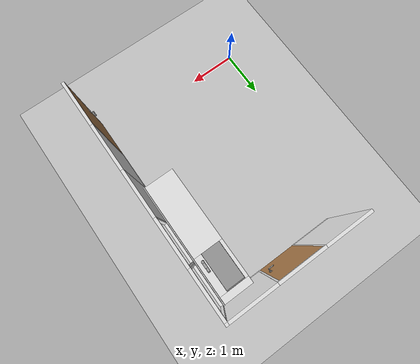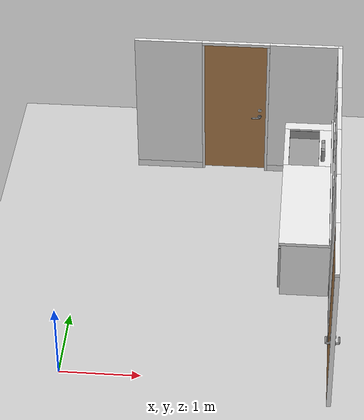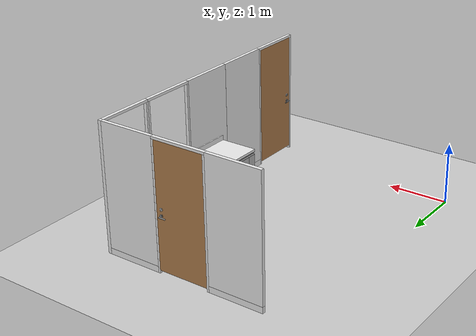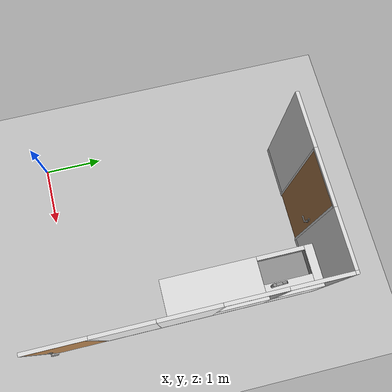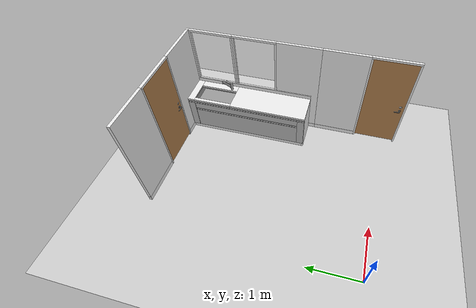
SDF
<sdf version="1.7">
 <world name="default">
  <model name="ground_plane">
   <static>1</static>
   <link name="link">
    <collision name="collision">
     <geometry><plane><normal>0 0 1</normal><size>100 100</size></plane></geometry>
     <surface>
      <contact><collide_bitmask>65535</collide_bitmask></contact>
      <friction><ode><mu>100</mu><mu2>50</mu2></ode></friction>
     </surface>
    </collision>
    <visual name="visual">
     <cast_shadows>0</cast_shadows>
     <geometry><plane><normal>0 0 1</normal><size>100 100</size></plane></geometry>
     <material>
      <script><uri>file://media/materials/scripts/gazebo.material</uri><name>Gazebo/Grey</name></script>
     </material>
    </visual>
   </link>
  </model>
  <model name="wall_front_a">
   <link name="link">
    <inertial>
     <mass>50</mass>
     <inertia><ixx>1</ixx><ixy>0</ixy><ixz>0</ixz><iyy>1</iyy><iyz>0</iyz><izz>1</izz></inertia>
    </inertial>
    <visual name="_frame">
     <pose>0 0 1.045 0 -0 0</pose>
     <geometry><box><size>0.055 0.055 2.09</size></box></geometry>
     <material>
      <script><uri>model://base_materials/color/scripts</uri><name>hsr_color/white</name></script>
     </material>
    </visual>
    <collision name="collision_frame">
     <pose>0 0 1.045 0 -0 0</pose>
     <geometry><box><size>0.055 0.055 2.09</size></box></geometry>
    </collision>
    <velocity_decay><linear>0</linear><angular>0</angular></velocity_decay>
   </link>
   <static>1</static>
   <pose>3.265 4.175 0 0 -0 0</pose>
  </model>
  <model name="wall_front_b">
   <link name="link">
    <inertial>
     <mass>50</mass>
     <inertia><ixx>1</ixx><ixy>0</ixy><ixz>0</ixz><iyy>1</iyy><iyz>0</iyz><izz>1</izz></inertia>
    </inertial>
    <visual name="bottom_frame">
     <pose>0 0 0.05 0 -0 0</pose>
     <geometry><box><size>0.055 0.9 0.1</size></box></geometry>
     <material>
      <script><uri>model://base_materials/color/scripts</uri><name>hsr_color/white</name></script>
     </material>
    </visual>
    <collision name="collision_bottom_frame">
     <pose>0 0 0.05 0 -0 0</pose>
     <geometry><box><size>0.055 0.9 0.1</size></box></geometry>
    </collision>
    <visual name="wall">
     <pose>0 0 0.4875 0 -0 0</pose>
     <geometry><box><size>0.055 0.9 0.775</size></box></geometry>
     <material>
      <script>
       <uri>model://base_materials/wall/scripts</uri>
       <uri>model://base_materials/wall/textures</uri>
       <name>wall/white_noise</name>
      </script>
     </material>
    </visual>
    <collision name="collision_wall">
     <pose>0 0 0.4875 0 -0 0</pose>
     <geometry><box><size>0.055 0.9 0.775</size></box></geometry>
    </collision>
    <visual name="center_frame">
     <pose>0 0 0.8925 0 -0 0</pose>
     <geometry><box><size>0.055 0.9 0.035</size></box></geometry>
     <material>
      <script><uri>model://base_materials/color/scripts</uri><name>hsr_color/white</name></script>
     </material>
    </visual>
    <collision name="collision_center_frame">
     <pose>0 0 0.8925 0 -0 0</pose>
     <geometry><box><size>0.055 0.9 0.035</size></box></geometry>
    </collision>
    <visual name="right_frame">
     <pose>0 0.4325 1.48 0 -0 0</pose>
     <geometry><box><size>0.055 0.035 1.14</size></box></geometry>
     <material>
      <script><uri>model://base_materials/color/scripts</uri><name>hsr_color/white</name></script>
     </material>
    </visual>
    <collision name="collision_right_frame">
     <pose>0 0.4325 1.48 0 -0 0</pose>
     <geometry><box><size>0.055 0.035 1.14</size></box></geometry>
    </collision>
    <visual name="left_frame">
     <pose>0 -0.4325 1.48 0 -0 0</pose>
     <geometry><box><size>0.055 0.035 1.14</size></box></geometry>
     <material>
      <script><uri>model://base_materials/color/scripts</uri><name>hsr_color/white</name></script>
     </material>
    </visual>
    <collision name="collision_left_frame">
     <pose>0 -0.4325 1.48 0 -0 0</pose>
     <geometry><box><size>0.055 0.035 1.14</size></box></geometry>
    </collision>
    <visual name="top_frame">
     <pose>0 0 2.07 0 -0 0</pose>
     <geometry><box><size>0.055 0.9 0.04</size></box></geometry>
     <material>
      <script><uri>model://base_materials/color/scripts</uri><name>hsr_color/white</name></script>
     </material>
    </visual>
    <collision name="collision_top_frame">
     <pose>0 0 2.07 0 -0 0</pose>
     <geometry><box><size>0.055 0.9 0.04</size></box></geometry>
    </collision>
    <velocity_decay><linear>0</linear><angular>0</angular></velocity_decay>
   </link>
   <static>1</static>
   <pose>3.265 3.698 0 0 -0 0</pose>
  </model>
  <model name="wall_front_c">
   <link name="link">
    <inertial>
     <mass>50</mass>
     <inertia><ixx>1</ixx><ixy>0</ixy><ixz>0</ixz><iyy>1</iyy><iyz>0</iyz><izz>1</izz></inertia>
    </inertial>
    <visual name="bottom_frame">
     <pose>0 0 0.05 0 -0 0</pose>
     <geometry><box><size>0.055 0.9 0.1</size></box></geometry>
     <material>
      <script><uri>model://base_materials/color/scripts</uri><name>hsr_color/white</name></script>
     </material>
    </visual>
    <collision name="collision_bottom_frame">
     <pose>0 0 0.05 0 -0 0</pose>
     <geometry><box><size>0.055 0.9 0.1</size></box></geometry>
    </collision>
    <visual name="wall">
     <pose>0 0 0.4875 0 -0 0</pose>
     <geometry><box><size>0.055 0.9 0.775</size></box></geometry>
     <material>
      <script>
       <uri>model://base_materials/wall/scripts</uri>
       <uri>model://base_materials/wall/textures</uri>
       <name>wall/white_noise</name>
      </script>
     </material>
    </visual>
    <collision name="collision_wall">
     <pose>0 0 0.4875 0 -0 0</pose>
     <geometry><box><size>0.055 0.9 0.775</size></box></geometry>
    </collision>
    <visual name="center_frame">
     <pose>0 0 0.8925 0 -0 0</pose>
     <geometry><box><size>0.055 0.9 0.035</size></box></geometry>
     <material>
      <script><uri>model://base_materials/color/scripts</uri><name>hsr_color/white</name></script>
     </material>
    </visual>
    <collision name="collision_center_frame">
     <pose>0 0 0.8925 0 -0 0</pose>
     <geometry><box><size>0.055 0.9 0.035</size></box></geometry>
    </collision>
    <visual name="right_frame">
     <pose>0 0.4325 1.48 0 -0 0</pose>
     <geometry><box><size>0.055 0.035 1.14</size></box></geometry>
     <material>
      <script><uri>model://base_materials/color/scripts</uri><name>hsr_color/white</name></script>
     </material>
    </visual>
    <collision name="collision_right_frame">
     <pose>0 0.4325 1.48 0 -0 0</pose>
     <geometry><box><size>0.055 0.035 1.14</size></box></geometry>
    </collision>
    <visual name="left_frame">
     <pose>0 -0.4325 1.48 0 -0 0</pose>
     <geometry><box><size>0.055 0.035 1.14</size></box></geometry>
     <material>
      <script><uri>model://base_materials/color/scripts</uri><name>hsr_color/white</name></script>
     </material>
    </visual>
    <collision name="collision_left_frame">
     <pose>0 -0.4325 1.48 0 -0 0</pose>
     <geometry><box><size>0.055 0.035 1.14</size></box></geometry>
    </collision>
    <visual name="top_frame">
     <pose>0 0 2.07 0 -0 0</pose>
     <geometry><box><size>0.055 0.9 0.04</size></box></geometry>
     <material>
      <script><uri>model://base_materials/color/scripts</uri><name>hsr_color/white</name></script>
     </material>
    </visual>
    <collision name="collision_top_frame">
     <pose>0 0 2.07 0 -0 0</pose>
     <geometry><box><size>0.055 0.9 0.04</size></box></geometry>
    </collision>
    <velocity_decay><linear>0</linear><angular>0</angular></velocity_decay>
   </link>
   <static>1</static>
   <pose>3.265 2.798 0 0 -0 0</pose>
  </model>
  <model name="wall_front_d">
   <link name="link">
    <inertial>
     <mass>50</mass>
     <inertia><ixx>1</ixx><ixy>0</ixy><ixz>0</ixz><iyy>1</iyy><iyz>0</iyz><izz>1</izz></inertia>
    </inertial>
    <visual name="bottom_frame">
     <pose>0 0 0.05 0 -0 0</pose>
     <geometry><box><size>0.055 0.9 0.1</size></box></geometry>
     <material>
      <script><uri>model://base_materials/color/scripts</uri><name>hsr_color/white</name></script>
     </material>
    </visual>
    <collision name="collision_bottom_frame">
     <pose>0 0 0.05 0 -0 0</pose>
     <geometry><box><size>0.055 0.9 0.1</size></box></geometry>
    </collision>
    <visual name="wall">
     <pose>0 0 1.095 0 -0 0</pose>
     <geometry><box><size>0.055 0.9 1.99</size></box></geometry>
     <material>
      <script>
       <uri>model://base_materials/wall/scripts</uri>
       <uri>model://base_materials/wall/textures</uri>
       <name>wall/white_noise</name>
      </script>
     </material>
    </visual>
    <collision name="collision_wall">
     <pose>0 0 1.095 0 -0 0</pose>
     <geometry><box><size>0.055 0.9 1.99</size></box></geometry>
    </collision>
    <velocity_decay><linear>0</linear><angular>0</angular></velocity_decay>
   </link>
   <static>1</static>
   <pose>3.265 1.898 0 0 -0 0</pose>
  </model>
  <model name="wall_front_e">
   <link name="link">
    <inertial>
     <mass>50</mass>
     <inertia><ixx>1</ixx><ixy>0</ixy><ixz>0</ixz><iyy>1</iyy><iyz>0</iyz><izz>1</izz></inertia>
    </inertial>
    <visual name="bottom_frame">
     <pose>0 0 0.05 0 -0 0</pose>
     <geometry><box><size>0.055 0.9 0.1</size></box></geometry>
     <material>
      <script><uri>model://base_materials/color/scripts</uri><name>hsr_color/white</name></script>
     </material>
    </visual>
    <collision name="collision_bottom_frame">
     <pose>0 0 0.05 0 -0 0</pose>
     <geometry><box><size>0.055 0.9 0.1</size></box></geometry>
    </collision>
    <visual name="wall">
     <pose>0 0 1.095 0 -0 0</pose>
     <geometry><box><size>0.055 0.9 1.99</size></box></geometry>
     <material>
      <script>
       <uri>model://base_materials/wall/scripts</uri>
       <uri>model://base_materials/wall/textures</uri>
       <name>wall/white_noise</name>
      </script>
     </material>
    </visual>
    <collision name="collision_wall">
     <pose>0 0 1.095 0 -0 0</pose>
     <geometry><box><size>0.055 0.9 1.99</size></box></geometry>
    </collision>
    <velocity_decay><linear>0</linear><angular>0</angular></velocity_decay>
   </link>
   <static>1</static>
   <pose>3.265 0.9975 0 0 -0 0</pose>
  </model>
  <model name="wall_front_f">
   <link name="link">
    <pose>0 0.45 0 0 -0 0</pose>
    <inertial>
     <mass>50</mass>
     <inertia><ixx>1</ixx><ixy>0</ixy><ixz>0</ixz><iyy>1</iyy><iyz>0</iyz><izz>1</izz></inertia>
    </inertial>
    <visual name="door">
     <pose>0 0 1.05 0 -0 0</pose>
     <geometry><box><size>0.055 0.83 2</size></box></geometry>
     <material>
      <script><uri>model://base_materials/wood/scripts/wood.material</uri><name>base_materials/wood</name></script>
     </material>
    </visual>
    <collision name="collision_door">
     <pose>0 0 1.05 0 -0 0</pose>
     <geometry><box><size>0.055 0.83 2</size></box></geometry>
    </collision>
    <visual name="right_frame">
     <pose>0 0.4325 1.025 0 -0 0</pose>
     <geometry><box><size>0.055 0.035 2.05</size></box></geometry>
     <material>
      <script><uri>model://base_materials/color/scripts</uri><name>hsr_color/white</name></script>
     </material>
    </visual>
    <collision name="collision_right_frame">
     <pose>0 0.4325 1.025 0 -0 0</pose>
     <geometry><box><size>0.055 0.035 2.05</size></box></geometry>
    </collision>
    <visual name="left_frame">
     <pose>0 -0.4325 1.025 0 -0 0</pose>
     <geometry><box><size>0.055 0.035 2.05</size></box></geometry>
     <material>
      <script><uri>model://base_materials/color/scripts</uri><name>hsr_color/white</name></script>
     </material>
    </visual>
    <collision name="collision_left_frame">
     <pose>0 -0.4325 1.025 0 -0 0</pose>
     <geometry><box><size>0.055 0.035 2.05</size></box></geometry>
    </collision>
    <visual name="top_frame">
     <pose>0 0 2.07 0 -0 0</pose>
     <geometry><box><size>0.055 0.9 0.04</size></box></geometry>
     <material>
      <script><uri>model://base_materials/color/scripts</uri><name>hsr_color/white</name></script>
     </material>
    </visual>
    <collision name="collision_top_frame">
     <pose>0 0 2.07 0 -0 0</pose>
     <geometry><box><size>0.055 0.9 0.04</size></box></geometry>
    </collision>
    <visual name="handle_front">
     <pose>0.0775 0.285 0.93 1.5708 -0 0</pose>
     <geometry><cylinder><radius>0.01</radius><length>0.1</length></cylinder></geometry>
     <material>
      <script><uri>model://base_materials/color/scripts</uri><name>hsr_color/grey</name></script>
     </material>
    </visual>
    <collision name="collision_handle_front">
     <pose>0.0775 0.285 0.93 1.5708 -0 0</pose>
     <geometry><cylinder><radius>0.01</radius><length>0.1</length></cylinder></geometry>
    </collision>
    <visual name="handle_back">
     <pose>-0.0775 0.285 0.93 1.5708 -0 0</pose>
     <geometry><cylinder><radius>0.01</radius><length>0.1</length></cylinder></geometry>
     <material>
      <script><uri>model://base_materials/color/scripts</uri><name>hsr_color/grey</name></script>
     </material>
    </visual>
    <collision name="collision_handle_back">
     <pose>-0.0775 0.285 0.93 1.5708 -0 0</pose>
     <geometry><cylinder><radius>0.01</radius><length>0.1</length></cylinder></geometry>
    </collision>
    <visual name="handle_center1">
     <pose>0 0.335 0.93 3.14159 1.57079 3.14159</pose>
     <geometry><cylinder><radius>0.01</radius><length>0.155</length></cylinder></geometry>
     <material>
      <script><uri>model://base_materials/color/scripts</uri><name>hsr_color/grey</name></script>
     </material>
    </visual>
    <collision name="collision_center1">
     <pose>0 0.335 0.93 3.14159 1.57079 3.14159</pose>
     <geometry><cylinder><radius>0.01</radius><length>0.155</length></cylinder></geometry>
    </collision>
    <visual name="handle_center2">
     <pose>0 0.335 0.93 3.14159 1.57079 3.14159</pose>
     <geometry><cylinder><radius>0.025</radius><length>0.075</length></cylinder></geometry>
     <material>
      <script><uri>model://base_materials/color/scripts</uri><name>hsr_color/grey</name></script>
     </material>
    </visual>
    <collision name="collision_center2">
     <pose>0 0.335 0.93 3.14159 1.57079 3.14159</pose>
     <geometry><cylinder><radius>0.025</radius><length>0.075</length></cylinder></geometry>
    </collision>
    <visual name="handle_front_right_corner">
     <pose>0.0775 0.335 0.93 0 -0 0</pose>
     <geometry><sphere><radius>0.01</radius></sphere></geometry>
     <material>
      <script><uri>model://base_materials/color/scripts</uri><name>hsr_color/grey</name></script>
     </material>
    </visual>
    <collision name="collision_handle_front_right_corner">
     <pose>0.0775 0.335 0.93 0 -0 0</pose>
     <geometry><sphere><radius>0.01</radius></sphere></geometry>
    </collision>
    <visual name="handle_front_left_corner">
     <pose>0.0775 0.235 0.93 0 -0 0</pose>
     <geometry><sphere><radius>0.01</radius></sphere></geometry>
     <material>
      <script><uri>model://base_materials/color/scripts</uri><name>hsr_color/grey</name></script>
     </material>
    </visual>
    <collision name="collision_handle_front_left_corner">
     <pose>0.0775 0.235 0.93 0 -0 0</pose>
     <geometry><sphere><radius>0.01</radius></sphere></geometry>
    </collision>
    <visual name="handle_back_right_corner">
     <pose>-0.0775 0.335 0.93 0 -0 0</pose>
     <geometry><sphere><radius>0.01</radius></sphere></geometry>
     <material>
      <script><uri>model://base_materials/color/scripts</uri><name>hsr_color/grey</name></script>
     </material>
    </visual>
    <collision name="collision_handle_back_right_corner">
     <pose>-0.0775 0.335 0.93 0 -0 0</pose>
     <geometry><sphere><radius>0.01</radius></sphere></geometry>
    </collision>
    <visual name="handle_back_left_corner">
     <pose>-0.0775 0.235 0.93 0 -0 0</pose>
     <geometry><sphere><radius>0.01</radius></sphere></geometry>
     <material>
      <script><uri>model://base_materials/color/scripts</uri><name>hsr_color/white</name></script>
     </material>
    </visual>
    <collision name="collision_handle_back_left_corner">
     <pose>-0.0775 0.235 0.93 0 -0 0</pose>
     <geometry><sphere><radius>0.01</radius></sphere></geometry>
    </collision>
    <visual name="handle_lock1">
     <pose>0 0.335 1.03 0 -0 0</pose>
     <geometry><box><size>0.075 0.005 0.04</size></box></geometry>
     <material>
      <script><uri>model://base_materials/color/scripts</uri><name>hsr_color/white</name></script>
     </material>
    </visual>
    <collision name="collision_handle_lock1">
     <pose>0 0.335 1.03 0 -0 0</pose>
     <geometry><box><size>0.075 0.005 0.04</size></box></geometry>
    </collision>
    <visual name="handle_lock2">
     <pose>0 0.335 1.03 3.14159 1.57079 3.14159</pose>
     <geometry><cylinder><radius>0.025</radius><length>0.065</length></cylinder></geometry>
     <material>
      <script><uri>model://base_materials/color/scripts</uri><name>hsr_color/white</name></script>
     </material>
    </visual>
    <collision name="collision_handle_lock2">
     <pose>0 0.335 1.03 3.14159 1.57079 3.14159</pose>
     <geometry><cylinder><radius>0.025</radius><length>0.065</length></cylinder></geometry>
    </collision>
    <velocity_decay><linear>0</linear><angular>0</angular></velocity_decay>
   </link>
   <static>1</static>
   <pose>3.265 0.5475 0 0 -0 3.14159</pose>
  </model>
  <model name="wall_right_a">
   <link name="link">
    <inertial>
     <mass>50</mass>
     <inertia><ixx>1</ixx><ixy>0</ixy><ixz>0</ixz><iyy>1</iyy><iyz>0</iyz><izz>1</izz></inertia>
    </inertial>
    <visual name="bottom_frame">
     <pose>0 0 0.05 0 -0 0</pose>
     <geometry><box><size>0.055 0.9 0.1</size></box></geometry>
     <material>
      <script><uri>model://base_materials/color/scripts</uri><name>hsr_color/white</name></script>
     </material>
    </visual>
    <collision name="collision_bottom_frame">
     <pose>0 0 0.05 0 -0 0</pose>
     <geometry><box><size>0.055 0.9 0.1</size></box></geometry>
    </collision>
    <visual name="wall">
     <pose>0 0 1.095 0 -0 0</pose>
     <geometry><box><size>0.055 0.9 1.99</size></box></geometry>
     <material>
      <script>
       <uri>model://base_materials/wall/scripts</uri>
       <uri>model://base_materials/wall/textures</uri>
       <name>wall/white_noise</name>
      </script>
     </material>
    </visual>
    <collision name="collision_wall">
     <pose>0 0 1.095 0 -0 0</pose>
     <geometry><box><size>0.055 0.9 1.99</size></box></geometry>
    </collision>
    <velocity_decay><linear>0</linear><angular>0</angular></velocity_decay>
   </link>
   <static>1</static>
   <pose>2.788 4.175 0 0 -0 1.5708</pose>
  </model>
  <model name="wall_right_b">
   <link name="link">
    <pose>0 0.45 0 0 -0 0</pose>
    <inertial>
     <mass>50</mass>
     <inertia><ixx>1</ixx><ixy>0</ixy><ixz>0</ixz><iyy>1</iyy><iyz>0</iyz><izz>1</izz></inertia>
    </inertial>
    <visual name="door">
     <pose>0 0 1.05 0 -0 0</pose>
     <geometry><box><size>0.055 0.83 2</size></box></geometry>
     <material>
      <script><uri>model://base_materials/wood/scripts/wood.material</uri><name>base_materials/wood</name></script>
     </material>
    </visual>
    <collision name="collision_door">
     <pose>0 0 1.05 0 -0 0</pose>
     <geometry><box><size>0.055 0.83 2</size></box></geometry>
    </collision>
    <visual name="right_frame">
     <pose>0 0.4325 1.025 0 -0 0</pose>
     <geometry><box><size>0.055 0.035 2.05</size></box></geometry>
     <material>
      <script><uri>model://base_materials/color/scripts</uri><name>hsr_color/white</name></script>
     </material>
    </visual>
    <collision name="collision_right_frame">
     <pose>0 0.4325 1.025 0 -0 0</pose>
     <geometry><box><size>0.055 0.035 2.05</size></box></geometry>
    </collision>
    <visual name="left_frame">
     <pose>0 -0.4325 1.025 0 -0 0</pose>
     <geometry><box><size>0.055 0.035 2.05</size></box></geometry>
     <material>
      <script><uri>model://base_materials/color/scripts</uri><name>hsr_color/white</name></script>
     </material>
    </visual>
    <collision name="collision_left_frame">
     <pose>0 -0.4325 1.025 0 -0 0</pose>
     <geometry><box><size>0.055 0.035 2.05</size></box></geometry>
    </collision>
    <visual name="top_frame">
     <pose>0 0 2.07 0 -0 0</pose>
     <geometry><box><size>0.055 0.9 0.04</size></box></geometry>
     <material>
      <script><uri>model://base_materials/color/scripts</uri><name>hsr_color/white</name></script>
     </material>
    </visual>
    <collision name="collision_top_frame">
     <pose>0 0 2.07 0 -0 0</pose>
     <geometry><box><size>0.055 0.9 0.04</size></box></geometry>
    </collision>
    <visual name="handle_front">
     <pose>0.0775 0.285 0.93 1.5708 -0 0</pose>
     <geometry><cylinder><radius>0.01</radius><length>0.1</length></cylinder></geometry>
     <material>
      <script><uri>model://base_materials/color/scripts</uri><name>hsr_color/grey</name></script>
     </material>
    </visual>
    <collision name="collision_handle_front">
     <pose>0.0775 0.285 0.93 1.5708 -0 0</pose>
     <geometry><cylinder><radius>0.01</radius><length>0.1</length></cylinder></geometry>
    </collision>
    <visual name="handle_back">
     <pose>-0.0775 0.285 0.93 1.5708 -0 0</pose>
     <geometry><cylinder><radius>0.01</radius><length>0.1</length></cylinder></geometry>
     <material>
      <script><uri>model://base_materials/color/scripts</uri><name>hsr_color/grey</name></script>
     </material>
    </visual>
    <collision name="collision_handle_back">
     <pose>-0.0775 0.285 0.93 1.5708 -0 0</pose>
     <geometry><cylinder><radius>0.01</radius><length>0.1</length></cylinder></geometry>
    </collision>
    <visual name="handle_center1">
     <pose>0 0.335 0.93 3.14159 1.57079 3.14159</pose>
     <geometry><cylinder><radius>0.01</radius><length>0.155</length></cylinder></geometry>
     <material>
      <script><uri>model://base_materials/color/scripts</uri><name>hsr_color/grey</name></script>
     </material>
    </visual>
    <collision name="collision_center1">
     <pose>0 0.335 0.93 3.14159 1.57079 3.14159</pose>
     <geometry><cylinder><radius>0.01</radius><length>0.155</length></cylinder></geometry>
    </collision>
    <visual name="handle_center2">
     <pose>0 0.335 0.93 3.14159 1.57079 3.14159</pose>
     <geometry><cylinder><radius>0.025</radius><length>0.075</length></cylinder></geometry>
     <material>
      <script><uri>model://base_materials/color/scripts</uri><name>hsr_color/grey</name></script>
     </material>
    </visual>
    <collision name="collision_center2">
     <pose>0 0.335 0.93 3.14159 1.57079 3.14159</pose>
     <geometry><cylinder><radius>0.025</radius><length>0.075</length></cylinder></geometry>
    </collision>
    <visual name="handle_front_right_corner">
     <pose>0.0775 0.335 0.93 0 -0 0</pose>
     <geometry><sphere><radius>0.01</radius></sphere></geometry>
     <material>
      <script><uri>model://base_materials/color/scripts</uri><name>hsr_color/grey</name></script>
     </material>
    </visual>
    <collision name="collision_handle_front_right_corner">
     <pose>0.0775 0.335 0.93 0 -0 0</pose>
     <geometry><sphere><radius>0.01</radius></sphere></geometry>
    </collision>
    <visual name="handle_front_left_corner">
     <pose>0.0775 0.235 0.93 0 -0 0</pose>
     <geometry><sphere><radius>0.01</radius></sphere></geometry>
     <material>
      <script><uri>model://base_materials/color/scripts</uri><name>hsr_color/grey</name></script>
     </material>
    </visual>
    <collision name="collision_handle_front_left_corner">
     <pose>0.0775 0.235 0.93 0 -0 0</pose>
     <geometry><sphere><radius>0.01</radius></sphere></geometry>
    </collision>
    <visual name="handle_back_right_corner">
     <pose>-0.0775 0.335 0.93 0 -0 0</pose>
     <geometry><sphere><radius>0.01</radius></sphere></geometry>
     <material>
      <script><uri>model://base_materials/color/scripts</uri><name>hsr_color/grey</name></script>
     </material>
    </visual>
    <collision name="collision_handle_back_right_corner">
     <pose>-0.0775 0.335 0.93 0 -0 0</pose>
     <geometry><sphere><radius>0.01</radius></sphere></geometry>
    </collision>
    <visual name="handle_back_left_corner">
     <pose>-0.0775 0.235 0.93 0 -0 0</pose>
     <geometry><sphere><radius>0.01</radius></sphere></geometry>
     <material>
      <script><uri>model://base_materials/color/scripts</uri><name>hsr_color/white</name></script>
     </material>
    </visual>
    <collision name="collision_handle_back_left_corner">
     <pose>-0.0775 0.235 0.93 0 -0 0</pose>
     <geometry><sphere><radius>0.01</radius></sphere></geometry>
    </collision>
    <visual name="handle_lock1">
     <pose>0 0.335 1.03 0 -0 0</pose>
     <geometry><box><size>0.075 0.005 0.04</size></box></geometry>
     <material>
      <script><uri>model://base_materials/color/scripts</uri><name>hsr_color/white</name></script>
     </material>
    </visual>
    <collision name="collision_handle_lock1">
     <pose>0 0.335 1.03 0 -0 0</pose>
     <geometry><box><size>0.075 0.005 0.04</size></box></geometry>
    </collision>
    <visual name="handle_lock2">
     <pose>0 0.335 1.03 3.14159 1.57079 3.14159</pose>
     <geometry><cylinder><radius>0.025</radius><length>0.065</length></cylinder></geometry>
     <material>
      <script><uri>model://base_materials/color/scripts</uri><name>hsr_color/white</name></script>
     </material>
    </visual>
    <collision name="collision_handle_lock2">
     <pose>0 0.335 1.03 3.14159 1.57079 3.14159</pose>
     <geometry><cylinder><radius>0.025</radius><length>0.065</length></cylinder></geometry>
    </collision>
    <velocity_decay><linear>0</linear><angular>0</angular></velocity_decay>
   </link>
   <static>1</static>
   <pose>1.4375 4.175 0 0 0 -1.5708</pose>
  </model>
  <model name="wall_right_c">
   <link name="link">
    <inertial>
     <mass>50</mass>
     <inertia><ixx>1</ixx><ixy>0</ixy><ixz>0</ixz><iyy>1</iyy><iyz>0</iyz><izz>1</izz></inertia>
    </inertial>
    <visual name="bottom_frame">
     <pose>0 0 0.05 0 -0 0</pose>
     <geometry><box><size>0.055 0.9 0.1</size></box></geometry>
     <material>
      <script><uri>model://base_materials/color/scripts</uri><name>hsr_color/white</name></script>
     </material>
    </visual>
    <collision name="collision_bottom_frame">
     <pose>0 0 0.05 0 -0 0</pose>
     <geometry><box><size>0.055 0.9 0.1</size></box></geometry>
    </collision>
    <visual name="wall">
     <pose>0 0 1.095 0 -0 0</pose>
     <geometry><box><size>0.055 0.9 1.99</size></box></geometry>
     <material>
      <script>
       <uri>model://base_materials/wall/scripts</uri>
       <uri>model://base_materials/wall/textures</uri>
       <name>wall/white_noise</name>
      </script>
     </material>
    </visual>
    <collision name="collision_wall">
     <pose>0 0 1.095 0 -0 0</pose>
     <geometry><box><size>0.055 0.9 1.99</size></box></geometry>
    </collision>
    <velocity_decay><linear>0</linear><angular>0</angular></velocity_decay>
   </link>
   <static>1</static>
   <pose>0.9875 4.175 0 0 -0 1.5708</pose>
  </model>
  <model name="sink">
   <link name="link">
    <inertial>
     <mass>10</mass>
     <inertia><ixx>1</ixx><ixy>0</ixy><ixz>0</ixz><iyy>1</iyy><iyz>0</iyz><izz>1</izz></inertia>
    </inertial>
    <visual name="faucet1">
     <pose>-0.52 0.82 0.94 0 -0 0</pose>
     <geometry><cylinder><radius>0.027</radius><length>0.18</length></cylinder></geometry>
     <material>
      <script><uri>model://base_materials/color/scripts</uri><name>hsr_color/grey</name></script>
     </material>
    </visual>
    <collision name="collision_faucet1">
     <pose>-0.52 0.82 0.94 0 -0 0</pose>
     <geometry><cylinder><radius>0.027</radius><length>0.18</length></cylinder></geometry>
    </collision>
    <visual name="faucet2">
     <pose>-0.52 0.72 0.97 1.047 -0 0</pose>
     <geometry><cylinder><radius>0.024</radius><length>0.24</length></cylinder></geometry>
     <material>
      <script><uri>model://base_materials/color/scripts</uri><name>hsr_color/grey</name></script>
     </material>
    </visual>
    <collision name="collision_faucet2">
     <pose>-0.52 0.72 0.97 1.047 -0 0</pose>
     <geometry><cylinder><radius>0.024</radius><length>0.24</length></cylinder></geometry>
    </collision>
    <visual name="faucet3">
     <pose>-0.52 0.63 1 0 -0 0</pose>
     <geometry><cylinder><radius>0.015</radius><length>0.04</length></cylinder></geometry>
     <material>
      <script><uri>model://base_materials/color/scripts</uri><name>hsr_color/grey</name></script>
     </material>
    </visual>
    <collision name="collision_faucet3">
     <pose>-0.52 0.63 1 0 -0 0</pose>
     <geometry><cylinder><radius>0.015</radius><length>0.04</length></cylinder></geometry>
    </collision>
    <visual name="faucet_handle">
     <pose>-0.52 0.75 1.03 1.309 -0 0</pose>
     <geometry><box><size>0.048 0.01 0.11</size></box></geometry>
     <material>
      <script><uri>model://base_materials/color/scripts</uri><name>hsr_color/grey</name></script>
     </material>
    </visual>
    <collision name="collision_faucet_handle">
     <pose>-0.52 0.75 1.03 1.309 -0 0</pose>
     <geometry><box><size>0.048 0.01 0.11</size></box></geometry>
    </collision>
    <visual name="back_bucket">
     <pose>-0.57 0.545 0.74 0 -0 0</pose>
     <geometry><box><size>0.02 0.8 0.18</size></box></geometry>
     <material>
      <script><uri>model://base_materials/color/scripts</uri><name>hsr_color/grey</name></script>
     </material>
    </visual>
    <collision name="collision_back_bucket">
     <pose>-0.57 0.545 0.74 0 -0 0</pose>
     <geometry><box><size>0.02 0.8 0.18</size></box></geometry>
    </collision>
    <visual name="front_bucket">
     <pose>-0.06 0.545 0.74 0 -0 0</pose>
     <geometry><box><size>0.02 0.8 0.18</size></box></geometry>
     <material>
      <script><uri>model://base_materials/color/scripts</uri><name>hsr_color/grey</name></script>
     </material>
    </visual>
    <collision name="collision_fromt_bucket">
     <pose>-0.06 0.545 0.74 0 -0 0</pose>
     <geometry><box><size>0.02 0.8 0.18</size></box></geometry>
    </collision>
    <visual name="left_bucket">
     <pose>-0.32 0.14 0.74 0 -0 0</pose>
     <geometry><box><size>0.5 0.02 0.18</size></box></geometry>
     <material>
      <script><uri>model://base_materials/color/scripts</uri><name>hsr_color/grey</name></script>
     </material>
    </visual>
    <collision name="collision_left_bucket">
     <pose>-0.32 0.14 0.74 0 -0 0</pose>
     <geometry><box><size>0.5 0.02 0.18</size></box></geometry>
    </collision>
    <visual name="right_bucket">
     <pose>-0.32 0.96 0.74 0 -0 0</pose>
     <geometry><box><size>0.5 0.02 0.18</size></box></geometry>
     <material>
      <script><uri>model://base_materials/color/scripts</uri><name>hsr_color/grey</name></script>
     </material>
    </visual>
    <collision name="collision_right_bucket">
     <pose>-0.32 0.96 0.74 0 -0 0</pose>
     <geometry><box><size>0.5 0.02 0.18</size></box></geometry>
    </collision>
    <visual name="bottom_bucket">
     <pose>-0.33 0.555 0.695 0 -0 0</pose>
     <geometry><box><size>0.52 0.82 0.02</size></box></geometry>
     <material>
      <script><uri>model://base_materials/color/scripts</uri><name>hsr_color/grey</name></script>
     </material>
    </visual>
    <collision name="collision_bottom_bucket">
     <pose>-0.33 0.555 0.695 0 -0 0</pose>
     <geometry><box><size>0.52 0.82 0.02</size></box></geometry>
    </collision>
    <visual name="front_board">
     <pose>-0.04 1.275 0.425 0 -0 0</pose>
     <geometry><box><size>0.02 2.549 0.85</size></box></geometry>
     <material>
      <script><uri>model://base_materials/color/scripts</uri><name>hsr_color/white</name></script>
     </material>
    </visual>
    <collision name="collision_front_board">
     <pose>-0.04 1.275 0.425 0 -0 0</pose>
     <geometry><box><size>0.02 2.549 0.85</size></box></geometry>
    </collision>
    <visual name="back_board1">
     <pose>-0.625 1.275 0.425 0 -0 0</pose>
     <geometry><box><size>0.05 2.549 0.85</size></box></geometry>
     <material>
      <script><uri>model://base_materials/color/scripts</uri><name>hsr_color/white</name></script>
     </material>
    </visual>
    <collision name="collision_back_board1">
     <pose>-0.625 1.275 0.425 0 -0 0</pose>
     <geometry><box><size>0.05 2.549 0.85</size></box></geometry>
    </collision>
    <visual name="left_board">
     <pose>-0.34 0.025 0.425 0 -0 0</pose>
     <geometry><box><size>0.62 0.05 0.85</size></box></geometry>
     <material>
      <script><uri>model://base_materials/color/scripts</uri><name>hsr_color/white</name></script>
     </material>
    </visual>
    <collision name="collision_left_board">
     <pose>-0.34 0.025 0.425 0 -0 0</pose>
     <geometry><box><size>0.62 0.05 0.85</size></box></geometry>
    </collision>
    <visual name="right_board">
     <pose>-0.34 2.525 0.425 0 -0 0</pose>
     <geometry><box><size>0.62 0.05 0.85</size></box></geometry>
     <material>
      <script><uri>model://base_materials/color/scripts</uri><name>hsr_color/white</name></script>
     </material>
    </visual>
    <collision name="collision_right_board">
     <pose>-0.34 2.525 0.425 0 -0 0</pose>
     <geometry><box><size>0.62 0.05 0.85</size></box></geometry>
    </collision>
    <visual name="top_left_board">
     <pose>-0.325 0.0725 0.835 0 -0 0</pose>
     <geometry><box><size>0.65 0.146 0.04</size></box></geometry>
     <material>
      <script><uri>model://base_materials/color/scripts</uri><name>hsr_color/white</name></script>
     </material>
    </visual>
    <collision name="collision_top_left_board">
     <pose>-0.325 0.0725 0.835 0 -0 0</pose>
     <geometry><box><size>0.65 0.146 0.04</size></box></geometry>
    </collision>
    <visual name="top_right_board">
     <pose>-0.325 1.7475 0.835 0 -0 0</pose>
     <geometry><box><size>0.65 1.606 0.04</size></box></geometry>
     <material>
      <script><uri>model://base_materials/color/scripts</uri><name>hsr_color/white</name></script>
     </material>
    </visual>
    <collision name="collision_top_right_board">
     <pose>-0.325 1.7475 0.835 0 -0 0</pose>
     <geometry><box><size>0.65 1.606 0.04</size></box></geometry>
    </collision>
    <visual name="top_front_board">
     <pose>-0.035 0.545 0.835 0 -0 0</pose>
     <geometry><box><size>0.07 0.8 0.04</size></box></geometry>
     <material>
      <script><uri>model://base_materials/color/scripts</uri><name>hsr_color/white</name></script>
     </material>
    </visual>
    <collision name="collision_top_front_board">
     <pose>-0.035 0.545 0.835 0 -0 0</pose>
     <geometry><box><size>0.07 0.8 0.04</size></box></geometry>
    </collision>
    <visual name="top_back_board">
     <pose>-0.56 0.545 0.835 0 -0 0</pose>
     <geometry><box><size>0.18 0.8 0.04</size></box></geometry>
     <material>
      <script><uri>model://base_materials/color/scripts</uri><name>hsr_color/white</name></script>
     </material>
    </visual>
    <collision name="collision_top_back_board">
     <pose>-0.56 0.545 0.835 0 -0 0</pose>
     <geometry><box><size>0.18 0.8 0.04</size></box></geometry>
    </collision>
    <visual name="back_board2">
     <pose>-0.64 1.275 0.895 0 -0 0</pose>
     <geometry><box><size>0.02 2.55 0.08</size></box></geometry>
     <material>
      <script><uri>model://base_materials/color/scripts</uri><name>hsr_color/white</name></script>
     </material>
    </visual>
    <collision name="collision_back_board2">
     <pose>-0.64 1.275 0.895 0 -0 0</pose>
     <geometry><box><size>0.02 2.55 0.08</size></box></geometry>
    </collision>
    <visual name="handle1_1">
     <pose>-0.015 1.275 0.81 0 -0 0</pose>
     <geometry><box><size>0.03 2.55 0.005</size></box></geometry>
     <material>
      <script><uri>model://base_materials/color/scripts</uri><name>hsr_color/grey</name></script>
     </material>
    </visual>
    <collision name="collision_handle1_1">
     <pose>-0.015 1.275 0.81 0 -0 0</pose>
     <geometry><box><size>0.03 2.55 0.005</size></box></geometry>
    </collision>
    <visual name="handle1_2">
     <pose>-0.029 1.275 0.7925 0 -0 0</pose>
     <geometry><box><size>0.005 2.55 0.04</size></box></geometry>
     <material>
      <script><uri>model://base_materials/color/scripts</uri><name>hsr_color/grey</name></script>
     </material>
    </visual>
    <collision name="collision_handle1_2">
     <pose>-0.029 1.275 0.7925 0 -0 0</pose>
     <geometry><box><size>0.005 2.55 0.04</size></box></geometry>
    </collision>
    <visual name="handle1_3">
     <pose>-0.015 1.275 0.77 0 -0 0</pose>
     <geometry><box><size>0.03 2.55 0.005</size></box></geometry>
     <material>
      <script><uri>model://base_materials/color/scripts</uri><name>hsr_color/grey</name></script>
     </material>
    </visual>
    <collision name="collision_handle1_3">
     <pose>-0.015 1.275 0.77 0 -0 0</pose>
     <geometry><box><size>0.03 2.55 0.005</size></box></geometry>
    </collision>
    <visual name="front_left_drawer">
     <pose>-0.015 0.0725 0.44 0 -0 0</pose>
     <geometry><box><size>0.03 0.145 0.66</size></box></geometry>
     <material>
      <script><uri>model://sink/scripts</uri><uri>model://sink/textures</uri><name>sink/001</name></script>
     </material>
    </visual>
    <collision name="collision_left_drawer">
     <pose>-0.015 0.0725 0.44 0 -0 0</pose>
     <geometry><box><size>0.03 0.145 0.66</size></box></geometry>
    </collision>
    <visual name="front_right_drawer">
     <pose>-0.015 2.4725 0.44 0 -0 0</pose>
     <geometry><box><size>0.03 0.145 0.66</size></box></geometry>
     <material>
      <script><uri>model://sink/scripts</uri><uri>model://sink/textures</uri><name>sink/001</name></script>
     </material>
    </visual>
    <collision name="collision_right_drawer">
     <pose>-0.015 2.4725 0.44 0 -0 0</pose>
     <geometry><box><size>0.03 0.145 0.66</size></box></geometry>
    </collision>
    <visual name="front_top_drawer">
     <pose>-0.015 1.275 0.6975 0 -0 0</pose>
     <geometry><box><size>0.03 2.25 0.145</size></box></geometry>
     <material>
      <script><uri>model://sink/scripts</uri><uri>model://sink/textures</uri><name>sink/001</name></script>
     </material>
    </visual>
    <collision name="collision_top_drawer">
     <pose>-0.015 1.275 0.6975 0 -0 0</pose>
     <geometry><box><size>0.03 2.25 0.145</size></box></geometry>
    </collision>
    <visual name="handle2_1">
     <pose>-0.015 1.275 0.62 0 -0 0</pose>
     <geometry><box><size>0.03 2.25 0.005</size></box></geometry>
     <material>
      <script><uri>model://base_materials/color/scripts</uri><name>hsr_color/grey</name></script>
     </material>
    </visual>
    <collision name="collision_handle2_1">
     <pose>-0.015 1.275 0.62 0 -0 0</pose>
     <geometry><box><size>0.03 2.25 0.005</size></box></geometry>
    </collision>
    <visual name="handle2_2">
     <pose>-0.029 1.275 0.6025 0 -0 0</pose>
     <geometry><box><size>0.005 2.25 0.04</size></box></geometry>
     <material>
      <script><uri>model://base_materials/color/scripts</uri><name>hsr_color/grey</name></script>
     </material>
    </visual>
    <collision name="collision_handle2_2">
     <pose>-0.029 1.275 0.6025 0 -0 0</pose>
     <geometry><box><size>0.005 2.25 0.04</size></box></geometry>
    </collision>
    <visual name="handle2_3">
     <pose>-0.015 1.275 0.58 0 -0 0</pose>
     <geometry><box><size>0.03 2.25 0.005</size></box></geometry>
     <material>
      <script><uri>model://base_materials/color/scripts</uri><name>hsr_color/grey</name></script>
     </material>
    </visual>
    <collision name="collision_handle2_3">
     <pose>-0.015 1.275 0.58 0 -0 0</pose>
     <geometry><box><size>0.03 2.25 0.005</size></box></geometry>
    </collision>
    <visual name="front_bottom_drawer">
     <pose>-0.015 1.275 0.345 0 -0 0</pose>
     <geometry><box><size>0.03 2.25 0.47</size></box></geometry>
     <material>
      <script><uri>model://sink/scripts</uri><uri>model://sink/textures</uri><name>sink/001</name></script>
     </material>
    </visual>
    <collision name="collision_bottom_drawer">
     <pose>-0.015 1.275 0.345 0 -0 0</pose>
     <geometry><box><size>0.03 2.25 0.47</size></box></geometry>
    </collision>
    <velocity_decay><linear>0</linear><angular>0</angular></velocity_decay>
   </link>
   <static>1</static>
   <pose>2.58 4.1375 0 0 -0 3.14159</pose>
  </model>
 </world>
</sdf>
